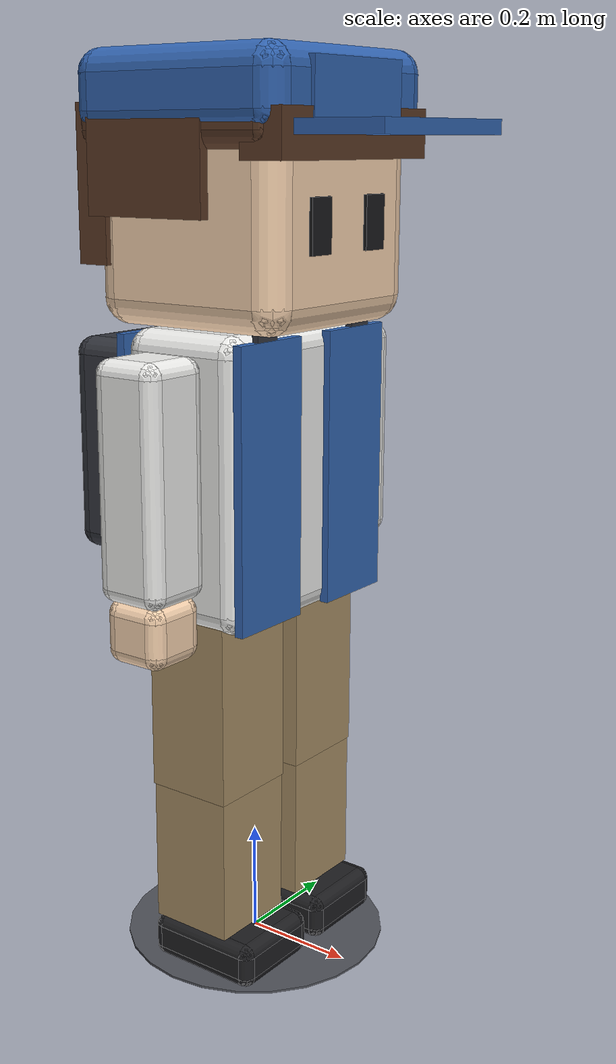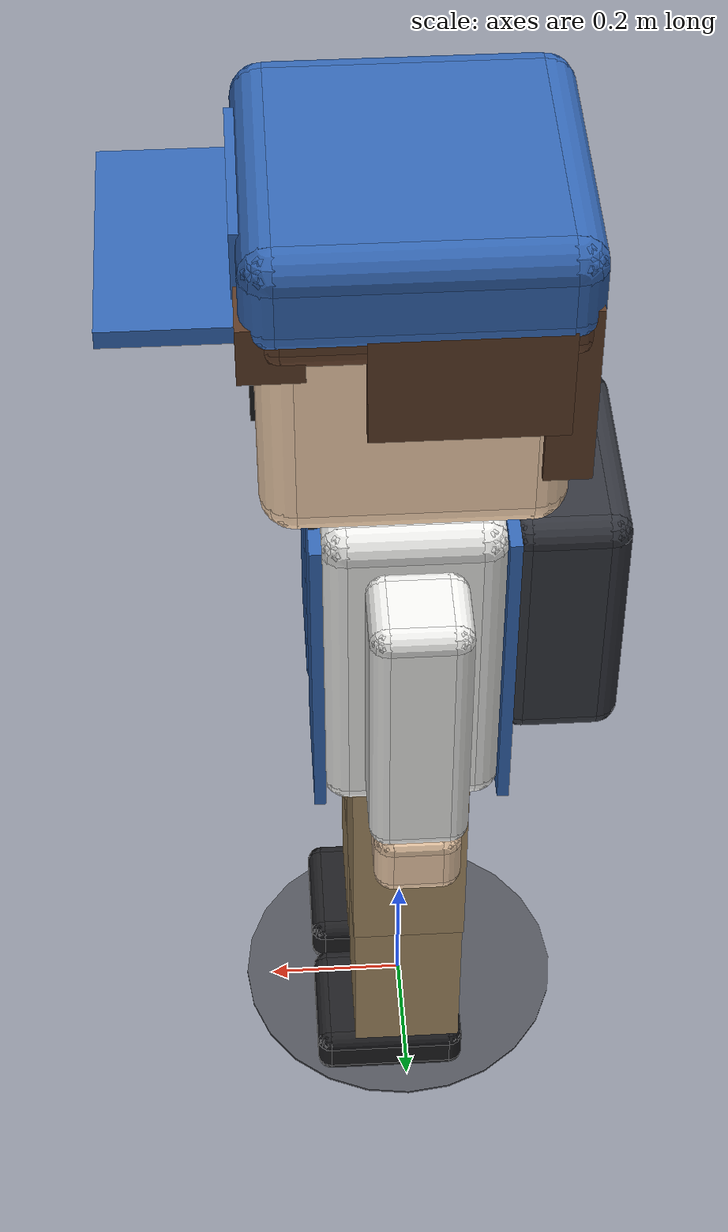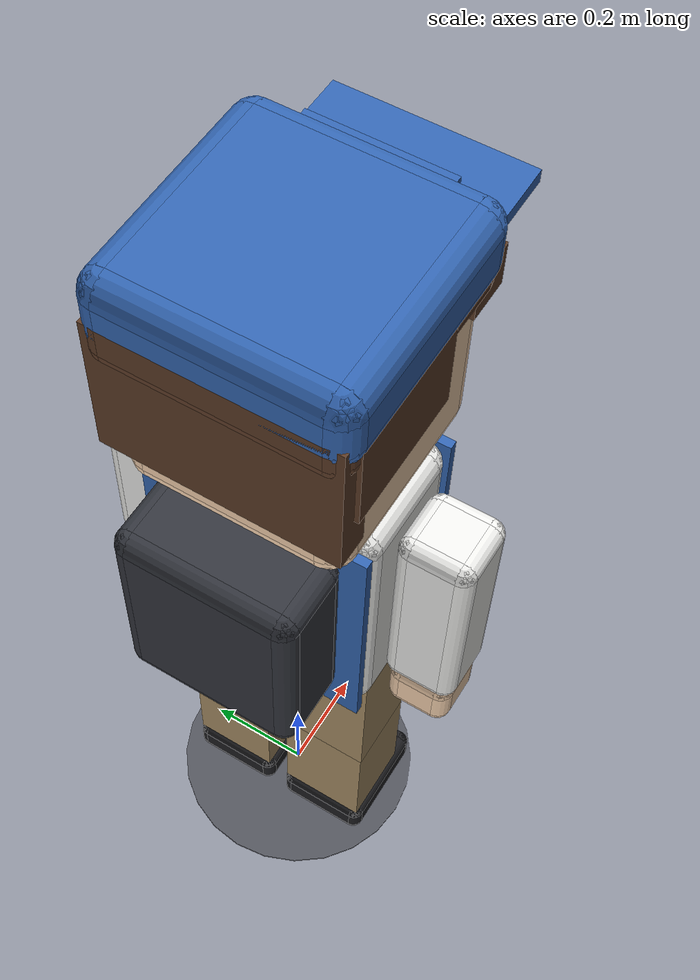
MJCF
<mujoco model="hakoniwa_person_passerby">
  <compiler angle="degree"/>
  <worldbody>
    <!-- 通行人: a stick that slides and turns; limbs are animated -->
    <body name="person" pos="0 0 0" gravcomp="1">
      <joint name="slide_x_joint" type="slide" axis="1 0 0" damping="20"/>
      <joint name="slide_y_joint" type="slide" axis="0 1 0" damping="20"/>
      <joint name="slide_z_joint" type="slide" axis="0 0 1"/>
      <joint name="turn_joint" type="hinge" axis="0 0 1" damping="5"/>
      <geom name="person_collision" type="capsule" fromto="0 0 0.54 0 0 1.36" size="0.22" mass="60" group="3" rgba="0.2 0.6 1 0"/>
      <!-- A round shadow under the feet (the stick's own part in the viewer) -->
      <geom name="shadow_visual" type="cylinder" pos="0 0 0.004" size="0.24 0.002" rgba="0.32 0.33 0.36 1" contype="0" conaffinity="0" density="0" group="1"/>
      <!-- The torso and the head are the stick's own (they do not move on it) -->
      <geom name="torso_x_visual" type="box" pos="0 0 0.9" size="0.12 0.165 0.215" rgba="0.94 0.94 0.93 1" contype="0" conaffinity="0" density="0" group="1"/>
      <geom name="torso_y_visual" type="box" pos="0 0 0.9" size="0.085 0.2 0.215" rgba="0.94 0.94 0.93 1" contype="0" conaffinity="0" density="0" group="1"/>
      <geom name="torso_z_visual" type="box" pos="0 0 0.9" size="0.085 0.165 0.25" rgba="0.94 0.94 0.93 1" contype="0" conaffinity="0" density="0" group="1"/>
      <geom name="torso_edge0_visual" type="capsule" fromto="-0.085 -0.165 0.685 0.085 -0.165 0.685" size="0.035" rgba="0.94 0.94 0.93 1" contype="0" conaffinity="0" density="0" group="1"/>
      <geom name="torso_edge1_visual" type="capsule" fromto="-0.085 -0.165 1.115 0.085 -0.165 1.115" size="0.035" rgba="0.94 0.94 0.93 1" contype="0" conaffinity="0" density="0" group="1"/>
      <geom name="torso_edge2_visual" type="capsule" fromto="-0.085 0.165 0.685 0.085 0.165 0.685" size="0.035" rgba="0.94 0.94 0.93 1" contype="0" conaffinity="0" density="0" group="1"/>
      <geom name="torso_edge3_visual" type="capsule" fromto="-0.085 0.165 1.115 0.085 0.165 1.115" size="0.035" rgba="0.94 0.94 0.93 1" contype="0" conaffinity="0" density="0" group="1"/>
      <geom name="torso_edge4_visual" type="capsule" fromto="-0.085 -0.165 0.685 -0.085 0.165 0.685" size="0.035" rgba="0.94 0.94 0.93 1" contype="0" conaffinity="0" density="0" group="1"/>
      <geom name="torso_edge5_visual" type="capsule" fromto="-0.085 -0.165 1.115 -0.085 0.165 1.115" size="0.035" rgba="0.94 0.94 0.93 1" contype="0" conaffinity="0" density="0" group="1"/>
      <geom name="torso_edge6_visual" type="capsule" fromto="0.085 -0.165 0.685 0.085 0.165 0.685" size="0.035" rgba="0.94 0.94 0.93 1" contype="0" conaffinity="0" density="0" group="1"/>
      <geom name="torso_edge7_visual" type="capsule" fromto="0.085 -0.165 1.115 0.085 0.165 1.115" size="0.035" rgba="0.94 0.94 0.93 1" contype="0" conaffinity="0" density="0" group="1"/>
      <geom name="torso_edge8_visual" type="capsule" fromto="-0.085 -0.165 0.685 -0.085 -0.165 1.115" size="0.035" rgba="0.94 0.94 0.93 1" contype="0" conaffinity="0" density="0" group="1"/>
      <geom name="torso_edge9_visual" type="capsule" fromto="-0.085 0.165 0.685 -0.085 0.165 1.115" size="0.035" rgba="0.94 0.94 0.93 1" contype="0" conaffinity="0" density="0" group="1"/>
      <geom name="torso_edge10_visual" type="capsule" fromto="0.085 -0.165 0.685 0.085 -0.165 1.115" size="0.035" rgba="0.94 0.94 0.93 1" contype="0" conaffinity="0" density="0" group="1"/>
      <geom name="torso_edge11_visual" type="capsule" fromto="0.085 0.165 0.685 0.085 0.165 1.115" size="0.035" rgba="0.94 0.94 0.93 1" contype="0" conaffinity="0" density="0" group="1"/>
      <geom name="vest_left_visual" type="box" pos="0.124 0.12 0.9" size="0.008 0.08 0.24" rgba="0.20 0.40 0.70 1" contype="0" conaffinity="0" density="0" group="1"/>
      <geom name="vest_right_visual" type="box" pos="0.124 -0.12 0.9" size="0.008 0.08 0.24" rgba="0.20 0.40 0.70 1" contype="0" conaffinity="0" density="0" group="1"/>
      <geom name="vest_back_visual" type="box" pos="-0.124 0 0.9" size="0.008 0.2 0.24" rgba="0.20 0.40 0.70 1" contype="0" conaffinity="0" density="0" group="1"/>
      <geom name="backpack_x_visual" type="box" pos="-0.2 0 0.93" size="0.08 0.13 0.16" rgba="0.20 0.21 0.24 1" contype="0" conaffinity="0" density="0" group="1"/>
      <geom name="backpack_y_visual" type="box" pos="-0.2 0 0.93" size="0.05 0.16 0.16" rgba="0.20 0.21 0.24 1" contype="0" conaffinity="0" density="0" group="1"/>
      <geom name="backpack_z_visual" type="box" pos="-0.2 0 0.93" size="0.05 0.13 0.19" rgba="0.20 0.21 0.24 1" contype="0" conaffinity="0" density="0" group="1"/>
      <geom name="backpack_edge0_visual" type="capsule" fromto="-0.25 -0.13 0.77 -0.15 -0.13 0.77" size="0.03" rgba="0.20 0.21 0.24 1" contype="0" conaffinity="0" density="0" group="1"/>
      <geom name="backpack_edge1_visual" type="capsule" fromto="-0.25 -0.13 1.09 -0.15 -0.13 1.09" size="0.03" rgba="0.20 0.21 0.24 1" contype="0" conaffinity="0" density="0" group="1"/>
      <geom name="backpack_edge2_visual" type="capsule" fromto="-0.25 0.13 0.77 -0.15 0.13 0.77" size="0.03" rgba="0.20 0.21 0.24 1" contype="0" conaffinity="0" density="0" group="1"/>
      <geom name="backpack_edge3_visual" type="capsule" fromto="-0.25 0.13 1.09 -0.15 0.13 1.09" size="0.03" rgba="0.20 0.21 0.24 1" contype="0" conaffinity="0" density="0" group="1"/>
      <geom name="backpack_edge4_visual" type="capsule" fromto="-0.25 -0.13 0.77 -0.25 0.13 0.77" size="0.03" rgba="0.20 0.21 0.24 1" contype="0" conaffinity="0" density="0" group="1"/>
      <geom name="backpack_edge5_visual" type="capsule" fromto="-0.25 -0.13 1.09 -0.25 0.13 1.09" size="0.03" rgba="0.20 0.21 0.24 1" contype="0" conaffinity="0" density="0" group="1"/>
      <geom name="backpack_edge6_visual" type="capsule" fromto="-0.15 -0.13 0.77 -0.15 0.13 0.77" size="0.03" rgba="0.20 0.21 0.24 1" contype="0" conaffinity="0" density="0" group="1"/>
      <geom name="backpack_edge7_visual" type="capsule" fromto="-0.15 -0.13 1.09 -0.15 0.13 1.09" size="0.03" rgba="0.20 0.21 0.24 1" contype="0" conaffinity="0" density="0" group="1"/>
      <geom name="backpack_edge8_visual" type="capsule" fromto="-0.25 -0.13 0.77 -0.25 -0.13 1.09" size="0.03" rgba="0.20 0.21 0.24 1" contype="0" conaffinity="0" density="0" group="1"/>
      <geom name="backpack_edge9_visual" type="capsule" fromto="-0.25 0.13 0.77 -0.25 0.13 1.09" size="0.03" rgba="0.20 0.21 0.24 1" contype="0" conaffinity="0" density="0" group="1"/>
      <geom name="backpack_edge10_visual" type="capsule" fromto="-0.15 -0.13 0.77 -0.15 -0.13 1.09" size="0.03" rgba="0.20 0.21 0.24 1" contype="0" conaffinity="0" density="0" group="1"/>
      <geom name="backpack_edge11_visual" type="capsule" fromto="-0.15 0.13 0.77 -0.15 0.13 1.09" size="0.03" rgba="0.20 0.21 0.24 1" contype="0" conaffinity="0" density="0" group="1"/>
      <geom name="backpack_strap_left_visual" type="box" pos="0.125 0.13 0.96" size="0.006 0.025 0.2" rgba="0.20 0.21 0.24 1" contype="0" conaffinity="0" density="0" group="1"/>
      <geom name="backpack_strap_right_visual" type="box" pos="0.125 -0.13 0.96" size="0.006 0.025 0.2" rgba="0.20 0.21 0.24 1" contype="0" conaffinity="0" density="0" group="1"/>
      <geom name="head_x_visual" type="box" pos="0 0 1.33" size="0.19 0.145 0.135" rgba="0.98 0.84 0.70 1" contype="0" conaffinity="0" density="0" group="1"/>
      <geom name="head_y_visual" type="box" pos="0 0 1.33" size="0.145 0.19 0.135" rgba="0.98 0.84 0.70 1" contype="0" conaffinity="0" density="0" group="1"/>
      <geom name="head_z_visual" type="box" pos="0 0 1.33" size="0.145 0.145 0.18" rgba="0.98 0.84 0.70 1" contype="0" conaffinity="0" density="0" group="1"/>
      <geom name="head_edge0_visual" type="capsule" fromto="-0.145 -0.145 1.195 0.145 -0.145 1.195" size="0.045" rgba="0.98 0.84 0.70 1" contype="0" conaffinity="0" density="0" group="1"/>
      <geom name="head_edge1_visual" type="capsule" fromto="-0.145 -0.145 1.465 0.145 -0.145 1.465" size="0.045" rgba="0.98 0.84 0.70 1" contype="0" conaffinity="0" density="0" group="1"/>
      <geom name="head_edge2_visual" type="capsule" fromto="-0.145 0.145 1.195 0.145 0.145 1.195" size="0.045" rgba="0.98 0.84 0.70 1" contype="0" conaffinity="0" density="0" group="1"/>
      <geom name="head_edge3_visual" type="capsule" fromto="-0.145 0.145 1.465 0.145 0.145 1.465" size="0.045" rgba="0.98 0.84 0.70 1" contype="0" conaffinity="0" density="0" group="1"/>
      <geom name="head_edge4_visual" type="capsule" fromto="-0.145 -0.145 1.195 -0.145 0.145 1.195" size="0.045" rgba="0.98 0.84 0.70 1" contype="0" conaffinity="0" density="0" group="1"/>
      <geom name="head_edge5_visual" type="capsule" fromto="-0.145 -0.145 1.465 -0.145 0.145 1.465" size="0.045" rgba="0.98 0.84 0.70 1" contype="0" conaffinity="0" density="0" group="1"/>
      <geom name="head_edge6_visual" type="capsule" fromto="0.145 -0.145 1.195 0.145 0.145 1.195" size="0.045" rgba="0.98 0.84 0.70 1" contype="0" conaffinity="0" density="0" group="1"/>
      <geom name="head_edge7_visual" type="capsule" fromto="0.145 -0.145 1.465 0.145 0.145 1.465" size="0.045" rgba="0.98 0.84 0.70 1" contype="0" conaffinity="0" density="0" group="1"/>
      <geom name="head_edge8_visual" type="capsule" fromto="-0.145 -0.145 1.195 -0.145 -0.145 1.465" size="0.045" rgba="0.98 0.84 0.70 1" contype="0" conaffinity="0" density="0" group="1"/>
      <geom name="head_edge9_visual" type="capsule" fromto="-0.145 0.145 1.195 -0.145 0.145 1.465" size="0.045" rgba="0.98 0.84 0.70 1" contype="0" conaffinity="0" density="0" group="1"/>
      <geom name="head_edge10_visual" type="capsule" fromto="0.145 -0.145 1.195 0.145 -0.145 1.465" size="0.045" rgba="0.98 0.84 0.70 1" contype="0" conaffinity="0" density="0" group="1"/>
      <geom name="head_edge11_visual" type="capsule" fromto="0.145 0.145 1.195 0.145 0.145 1.465" size="0.045" rgba="0.98 0.84 0.70 1" contype="0" conaffinity="0" density="0" group="1"/>
      <geom name="eye_left_visual" type="box" pos="0.192 0.075 1.32" size="0.004 0.026 0.045" rgba="0.10 0.10 0.11 1" contype="0" conaffinity="0" density="0" group="1"/>
      <geom name="eye_right_visual" type="box" pos="0.192 -0.075 1.32" size="0.004 0.026 0.045" rgba="0.10 0.10 0.11 1" contype="0" conaffinity="0" density="0" group="1"/>
      <geom name="hair_top_x_visual" type="box" pos="-0.01 0 1.49" size="0.205 0.17 0.025" rgba="0.36 0.23 0.15 1" contype="0" conaffinity="0" density="0" group="1"/>
      <geom name="hair_top_y_visual" type="box" pos="-0.01 0 1.49" size="0.17 0.205 0.025" rgba="0.36 0.23 0.15 1" contype="0" conaffinity="0" density="0" group="1"/>
      <geom name="hair_top_z_visual" type="box" pos="-0.01 0 1.49" size="0.17 0.17 0.06" rgba="0.36 0.23 0.15 1" contype="0" conaffinity="0" density="0" group="1"/>
      <geom name="hair_top_edge0_visual" type="capsule" fromto="-0.18 -0.17 1.465 0.16 -0.17 1.465" size="0.035" rgba="0.36 0.23 0.15 1" contype="0" conaffinity="0" density="0" group="1"/>
      <geom name="hair_top_edge1_visual" type="capsule" fromto="-0.18 -0.17 1.515 0.16 -0.17 1.515" size="0.035" rgba="0.36 0.23 0.15 1" contype="0" conaffinity="0" density="0" group="1"/>
      <geom name="hair_top_edge2_visual" type="capsule" fromto="-0.18 0.17 1.465 0.16 0.17 1.465" size="0.035" rgba="0.36 0.23 0.15 1" contype="0" conaffinity="0" density="0" group="1"/>
      <geom name="hair_top_edge3_visual" type="capsule" fromto="-0.18 0.17 1.515 0.16 0.17 1.515" size="0.035" rgba="0.36 0.23 0.15 1" contype="0" conaffinity="0" density="0" group="1"/>
      <geom name="hair_top_edge4_visual" type="capsule" fromto="-0.18 -0.17 1.465 -0.18 0.17 1.465" size="0.035" rgba="0.36 0.23 0.15 1" contype="0" conaffinity="0" density="0" group="1"/>
      <geom name="hair_top_edge5_visual" type="capsule" fromto="-0.18 -0.17 1.515 -0.18 0.17 1.515" size="0.035" rgba="0.36 0.23 0.15 1" contype="0" conaffinity="0" density="0" group="1"/>
      <geom name="hair_top_edge6_visual" type="capsule" fromto="0.16 -0.17 1.465 0.16 0.17 1.465" size="0.035" rgba="0.36 0.23 0.15 1" contype="0" conaffinity="0" density="0" group="1"/>
      <geom name="hair_top_edge7_visual" type="capsule" fromto="0.16 -0.17 1.515 0.16 0.17 1.515" size="0.035" rgba="0.36 0.23 0.15 1" contype="0" conaffinity="0" density="0" group="1"/>
      <geom name="hair_top_edge8_visual" type="capsule" fromto="-0.18 -0.17 1.465 -0.18 -0.17 1.515" size="0.035" rgba="0.36 0.23 0.15 1" contype="0" conaffinity="0" density="0" group="1"/>
      <geom name="hair_top_edge9_visual" type="capsule" fromto="-0.18 0.17 1.465 -0.18 0.17 1.515" size="0.035" rgba="0.36 0.23 0.15 1" contype="0" conaffinity="0" density="0" group="1"/>
      <geom name="hair_top_edge10_visual" type="capsule" fromto="0.16 -0.17 1.465 0.16 -0.17 1.515" size="0.035" rgba="0.36 0.23 0.15 1" contype="0" conaffinity="0" density="0" group="1"/>
      <geom name="hair_top_edge11_visual" type="capsule" fromto="0.16 0.17 1.465 0.16 0.17 1.515" size="0.035" rgba="0.36 0.23 0.15 1" contype="0" conaffinity="0" density="0" group="1"/>
      <geom name="hair_back_visual" type="box" pos="-0.18 0 1.38" size="0.03 0.2 0.13" rgba="0.36 0.23 0.15 1" contype="0" conaffinity="0" density="0" group="1"/>
      <geom name="hair_fringe_visual" type="box" pos="0.17 0 1.46" size="0.04 0.2 0.04" rgba="0.36 0.23 0.15 1" contype="0" conaffinity="0" density="0" group="1"/>
      <geom name="hair_side_left_visual" type="box" pos="-0.06 0.19 1.41" size="0.12 0.018 0.08" rgba="0.36 0.23 0.15 1" contype="0" conaffinity="0" density="0" group="1"/>
      <geom name="hair_side_right_visual" type="box" pos="-0.06 -0.19 1.41" size="0.12 0.018 0.08" rgba="0.36 0.23 0.15 1" contype="0" conaffinity="0" density="0" group="1"/>
      <geom name="cap_x_visual" type="box" pos="-0.005 0 1.525" size="0.21 0.17 0.03" rgba="0.20 0.40 0.70 1" contype="0" conaffinity="0" density="0" group="1"/>
      <geom name="cap_y_visual" type="box" pos="-0.005 0 1.525" size="0.17 0.21 0.03" rgba="0.20 0.40 0.70 1" contype="0" conaffinity="0" density="0" group="1"/>
      <geom name="cap_z_visual" type="box" pos="-0.005 0 1.525" size="0.17 0.17 0.07" rgba="0.20 0.40 0.70 1" contype="0" conaffinity="0" density="0" group="1"/>
      <geom name="cap_edge0_visual" type="capsule" fromto="-0.175 -0.17 1.495 0.165 -0.17 1.495" size="0.04" rgba="0.20 0.40 0.70 1" contype="0" conaffinity="0" density="0" group="1"/>
      <geom name="cap_edge1_visual" type="capsule" fromto="-0.175 -0.17 1.555 0.165 -0.17 1.555" size="0.04" rgba="0.20 0.40 0.70 1" contype="0" conaffinity="0" density="0" group="1"/>
      <geom name="cap_edge2_visual" type="capsule" fromto="-0.175 0.17 1.495 0.165 0.17 1.495" size="0.04" rgba="0.20 0.40 0.70 1" contype="0" conaffinity="0" density="0" group="1"/>
      <geom name="cap_edge3_visual" type="capsule" fromto="-0.175 0.17 1.555 0.165 0.17 1.555" size="0.04" rgba="0.20 0.40 0.70 1" contype="0" conaffinity="0" density="0" group="1"/>
      <geom name="cap_edge4_visual" type="capsule" fromto="-0.175 -0.17 1.495 -0.175 0.17 1.495" size="0.04" rgba="0.20 0.40 0.70 1" contype="0" conaffinity="0" density="0" group="1"/>
      <geom name="cap_edge5_visual" type="capsule" fromto="-0.175 -0.17 1.555 -0.175 0.17 1.555" size="0.04" rgba="0.20 0.40 0.70 1" contype="0" conaffinity="0" density="0" group="1"/>
      <geom name="cap_edge6_visual" type="capsule" fromto="0.165 -0.17 1.495 0.165 0.17 1.495" size="0.04" rgba="0.20 0.40 0.70 1" contype="0" conaffinity="0" density="0" group="1"/>
      <geom name="cap_edge7_visual" type="capsule" fromto="0.165 -0.17 1.555 0.165 0.17 1.555" size="0.04" rgba="0.20 0.40 0.70 1" contype="0" conaffinity="0" density="0" group="1"/>
      <geom name="cap_edge8_visual" type="capsule" fromto="-0.175 -0.17 1.495 -0.175 -0.17 1.555" size="0.04" rgba="0.20 0.40 0.70 1" contype="0" conaffinity="0" density="0" group="1"/>
      <geom name="cap_edge9_visual" type="capsule" fromto="-0.175 0.17 1.495 -0.175 0.17 1.555" size="0.04" rgba="0.20 0.40 0.70 1" contype="0" conaffinity="0" density="0" group="1"/>
      <geom name="cap_edge10_visual" type="capsule" fromto="0.165 -0.17 1.495 0.165 -0.17 1.555" size="0.04" rgba="0.20 0.40 0.70 1" contype="0" conaffinity="0" density="0" group="1"/>
      <geom name="cap_edge11_visual" type="capsule" fromto="0.165 0.17 1.495 0.165 0.17 1.555" size="0.04" rgba="0.20 0.40 0.70 1" contype="0" conaffinity="0" density="0" group="1"/>
      <geom name="cap_front_visual" type="box" pos="0.206 0 1.525" size="0.006 0.12 0.05" rgba="0.20 0.40 0.70 1" contype="0" conaffinity="0" density="0" group="1"/>
      <geom name="cap_brim_visual" type="box" pos="0.28 0 1.47" size="0.09 0.17 0.012" rgba="0.20 0.40 0.70 1" contype="0" conaffinity="0" density="0" group="1"/>
      <body name="arm_left" pos="0 0.27 1.1">
        <joint name="shoulder_left_joint" type="hinge" axis="0 1 0" range="-75 75" limited="true" stiffness="40" damping="4"/>
        <inertial pos="0 0 -0.25" mass="0.5" diaginertia="0.01 0.01 0.002"/>
        <geom name="arm_left_x_visual" type="box" pos="0 0 -0.18" size="0.065 0.04 0.175" rgba="0.94 0.94 0.93 1" contype="0" conaffinity="0" density="0" group="1"/>
        <geom name="arm_left_y_visual" type="box" pos="0 0 -0.18" size="0.04 0.065 0.175" rgba="0.94 0.94 0.93 1" contype="0" conaffinity="0" density="0" group="1"/>
        <geom name="arm_left_z_visual" type="box" pos="0 0 -0.18" size="0.04 0.04 0.2" rgba="0.94 0.94 0.93 1" contype="0" conaffinity="0" density="0" group="1"/>
        <geom name="arm_left_edge0_visual" type="capsule" fromto="-0.04 -0.04 -0.355 0.04 -0.04 -0.355" size="0.025" rgba="0.94 0.94 0.93 1" contype="0" conaffinity="0" density="0" group="1"/>
        <geom name="arm_left_edge1_visual" type="capsule" fromto="-0.04 -0.04 -0.005 0.04 -0.04 -0.005" size="0.025" rgba="0.94 0.94 0.93 1" contype="0" conaffinity="0" density="0" group="1"/>
        <geom name="arm_left_edge2_visual" type="capsule" fromto="-0.04 0.04 -0.355 0.04 0.04 -0.355" size="0.025" rgba="0.94 0.94 0.93 1" contype="0" conaffinity="0" density="0" group="1"/>
        <geom name="arm_left_edge3_visual" type="capsule" fromto="-0.04 0.04 -0.005 0.04 0.04 -0.005" size="0.025" rgba="0.94 0.94 0.93 1" contype="0" conaffinity="0" density="0" group="1"/>
        <geom name="arm_left_edge4_visual" type="capsule" fromto="-0.04 -0.04 -0.355 -0.04 0.04 -0.355" size="0.025" rgba="0.94 0.94 0.93 1" contype="0" conaffinity="0" density="0" group="1"/>
        <geom name="arm_left_edge5_visual" type="capsule" fromto="-0.04 -0.04 -0.005 -0.04 0.04 -0.005" size="0.025" rgba="0.94 0.94 0.93 1" contype="0" conaffinity="0" density="0" group="1"/>
        <geom name="arm_left_edge6_visual" type="capsule" fromto="0.04 -0.04 -0.355 0.04 0.04 -0.355" size="0.025" rgba="0.94 0.94 0.93 1" contype="0" conaffinity="0" density="0" group="1"/>
        <geom name="arm_left_edge7_visual" type="capsule" fromto="0.04 -0.04 -0.005 0.04 0.04 -0.005" size="0.025" rgba="0.94 0.94 0.93 1" contype="0" conaffinity="0" density="0" group="1"/>
        <geom name="arm_left_edge8_visual" type="capsule" fromto="-0.04 -0.04 -0.355 -0.04 -0.04 -0.005" size="0.025" rgba="0.94 0.94 0.93 1" contype="0" conaffinity="0" density="0" group="1"/>
        <geom name="arm_left_edge9_visual" type="capsule" fromto="-0.04 0.04 -0.355 -0.04 0.04 -0.005" size="0.025" rgba="0.94 0.94 0.93 1" contype="0" conaffinity="0" density="0" group="1"/>
        <geom name="arm_left_edge10_visual" type="capsule" fromto="0.04 -0.04 -0.355 0.04 -0.04 -0.005" size="0.025" rgba="0.94 0.94 0.93 1" contype="0" conaffinity="0" density="0" group="1"/>
        <geom name="arm_left_edge11_visual" type="capsule" fromto="0.04 0.04 -0.355 0.04 0.04 -0.005" size="0.025" rgba="0.94 0.94 0.93 1" contype="0" conaffinity="0" density="0" group="1"/>
        <geom name="hand_left_x_visual" type="box" pos="0 0 -0.43" size="0.058 0.033 0.03" rgba="0.98 0.84 0.70 1" contype="0" conaffinity="0" density="0" group="1"/>
        <geom name="hand_left_y_visual" type="box" pos="0 0 -0.43" size="0.033 0.058 0.03" rgba="0.98 0.84 0.70 1" contype="0" conaffinity="0" density="0" group="1"/>
        <geom name="hand_left_z_visual" type="box" pos="0 0 -0.43" size="0.033 0.033 0.055" rgba="0.98 0.84 0.70 1" contype="0" conaffinity="0" density="0" group="1"/>
        <geom name="hand_left_edge0_visual" type="capsule" fromto="-0.033 -0.033 -0.46 0.033 -0.033 -0.46" size="0.025" rgba="0.98 0.84 0.70 1" contype="0" conaffinity="0" density="0" group="1"/>
        <geom name="hand_left_edge1_visual" type="capsule" fromto="-0.033 -0.033 -0.4 0.033 -0.033 -0.4" size="0.025" rgba="0.98 0.84 0.70 1" contype="0" conaffinity="0" density="0" group="1"/>
        <geom name="hand_left_edge2_visual" type="capsule" fromto="-0.033 0.033 -0.46 0.033 0.033 -0.46" size="0.025" rgba="0.98 0.84 0.70 1" contype="0" conaffinity="0" density="0" group="1"/>
        <geom name="hand_left_edge3_visual" type="capsule" fromto="-0.033 0.033 -0.4 0.033 0.033 -0.4" size="0.025" rgba="0.98 0.84 0.70 1" contype="0" conaffinity="0" density="0" group="1"/>
        <geom name="hand_left_edge4_visual" type="capsule" fromto="-0.033 -0.033 -0.46 -0.033 0.033 -0.46" size="0.025" rgba="0.98 0.84 0.70 1" contype="0" conaffinity="0" density="0" group="1"/>
        <geom name="hand_left_edge5_visual" type="capsule" fromto="-0.033 -0.033 -0.4 -0.033 0.033 -0.4" size="0.025" rgba="0.98 0.84 0.70 1" contype="0" conaffinity="0" density="0" group="1"/>
        <geom name="hand_left_edge6_visual" type="capsule" fromto="0.033 -0.033 -0.46 0.033 0.033 -0.46" size="0.025" rgba="0.98 0.84 0.70 1" contype="0" conaffinity="0" density="0" group="1"/>
        <geom name="hand_left_edge7_visual" type="capsule" fromto="0.033 -0.033 -0.4 0.033 0.033 -0.4" size="0.025" rgba="0.98 0.84 0.70 1" contype="0" conaffinity="0" density="0" group="1"/>
        <geom name="hand_left_edge8_visual" type="capsule" fromto="-0.033 -0.033 -0.46 -0.033 -0.033 -0.4" size="0.025" rgba="0.98 0.84 0.70 1" contype="0" conaffinity="0" density="0" group="1"/>
        <geom name="hand_left_edge9_visual" type="capsule" fromto="-0.033 0.033 -0.46 -0.033 0.033 -0.4" size="0.025" rgba="0.98 0.84 0.70 1" contype="0" conaffinity="0" density="0" group="1"/>
        <geom name="hand_left_edge10_visual" type="capsule" fromto="0.033 -0.033 -0.46 0.033 -0.033 -0.4" size="0.025" rgba="0.98 0.84 0.70 1" contype="0" conaffinity="0" density="0" group="1"/>
        <geom name="hand_left_edge11_visual" type="capsule" fromto="0.033 0.033 -0.46 0.033 0.033 -0.4" size="0.025" rgba="0.98 0.84 0.70 1" contype="0" conaffinity="0" density="0" group="1"/>
      </body>
      <body name="arm_right" pos="0 -0.27 1.1">
        <joint name="shoulder_right_joint" type="hinge" axis="0 1 0" range="-75 75" limited="true" stiffness="40" damping="4"/>
        <inertial pos="0 0 -0.25" mass="0.5" diaginertia="0.01 0.01 0.002"/>
        <geom name="arm_right_x_visual" type="box" pos="0 0 -0.18" size="0.065 0.04 0.175" rgba="0.94 0.94 0.93 1" contype="0" conaffinity="0" density="0" group="1"/>
        <geom name="arm_right_y_visual" type="box" pos="0 0 -0.18" size="0.04 0.065 0.175" rgba="0.94 0.94 0.93 1" contype="0" conaffinity="0" density="0" group="1"/>
        <geom name="arm_right_z_visual" type="box" pos="0 0 -0.18" size="0.04 0.04 0.2" rgba="0.94 0.94 0.93 1" contype="0" conaffinity="0" density="0" group="1"/>
        <geom name="arm_right_edge0_visual" type="capsule" fromto="-0.04 -0.04 -0.355 0.04 -0.04 -0.355" size="0.025" rgba="0.94 0.94 0.93 1" contype="0" conaffinity="0" density="0" group="1"/>
        <geom name="arm_right_edge1_visual" type="capsule" fromto="-0.04 -0.04 -0.005 0.04 -0.04 -0.005" size="0.025" rgba="0.94 0.94 0.93 1" contype="0" conaffinity="0" density="0" group="1"/>
        <geom name="arm_right_edge2_visual" type="capsule" fromto="-0.04 0.04 -0.355 0.04 0.04 -0.355" size="0.025" rgba="0.94 0.94 0.93 1" contype="0" conaffinity="0" density="0" group="1"/>
        <geom name="arm_right_edge3_visual" type="capsule" fromto="-0.04 0.04 -0.005 0.04 0.04 -0.005" size="0.025" rgba="0.94 0.94 0.93 1" contype="0" conaffinity="0" density="0" group="1"/>
        <geom name="arm_right_edge4_visual" type="capsule" fromto="-0.04 -0.04 -0.355 -0.04 0.04 -0.355" size="0.025" rgba="0.94 0.94 0.93 1" contype="0" conaffinity="0" density="0" group="1"/>
        <geom name="arm_right_edge5_visual" type="capsule" fromto="-0.04 -0.04 -0.005 -0.04 0.04 -0.005" size="0.025" rgba="0.94 0.94 0.93 1" contype="0" conaffinity="0" density="0" group="1"/>
        <geom name="arm_right_edge6_visual" type="capsule" fromto="0.04 -0.04 -0.355 0.04 0.04 -0.355" size="0.025" rgba="0.94 0.94 0.93 1" contype="0" conaffinity="0" density="0" group="1"/>
        <geom name="arm_right_edge7_visual" type="capsule" fromto="0.04 -0.04 -0.005 0.04 0.04 -0.005" size="0.025" rgba="0.94 0.94 0.93 1" contype="0" conaffinity="0" density="0" group="1"/>
        <geom name="arm_right_edge8_visual" type="capsule" fromto="-0.04 -0.04 -0.355 -0.04 -0.04 -0.005" size="0.025" rgba="0.94 0.94 0.93 1" contype="0" conaffinity="0" density="0" group="1"/>
        <geom name="arm_right_edge9_visual" type="capsule" fromto="-0.04 0.04 -0.355 -0.04 0.04 -0.005" size="0.025" rgba="0.94 0.94 0.93 1" contype="0" conaffinity="0" density="0" group="1"/>
        <geom name="arm_right_edge10_visual" type="capsule" fromto="0.04 -0.04 -0.355 0.04 -0.04 -0.005" size="0.025" rgba="0.94 0.94 0.93 1" contype="0" conaffinity="0" density="0" group="1"/>
        <geom name="arm_right_edge11_visual" type="capsule" fromto="0.04 0.04 -0.355 0.04 0.04 -0.005" size="0.025" rgba="0.94 0.94 0.93 1" contype="0" conaffinity="0" density="0" group="1"/>
        <geom name="hand_right_x_visual" type="box" pos="0 0 -0.43" size="0.058 0.033 0.03" rgba="0.98 0.84 0.70 1" contype="0" conaffinity="0" density="0" group="1"/>
        <geom name="hand_right_y_visual" type="box" pos="0 0 -0.43" size="0.033 0.058 0.03" rgba="0.98 0.84 0.70 1" contype="0" conaffinity="0" density="0" group="1"/>
        <geom name="hand_right_z_visual" type="box" pos="0 0 -0.43" size="0.033 0.033 0.055" rgba="0.98 0.84 0.70 1" contype="0" conaffinity="0" density="0" group="1"/>
        <geom name="hand_right_edge0_visual" type="capsule" fromto="-0.033 -0.033 -0.46 0.033 -0.033 -0.46" size="0.025" rgba="0.98 0.84 0.70 1" contype="0" conaffinity="0" density="0" group="1"/>
        <geom name="hand_right_edge1_visual" type="capsule" fromto="-0.033 -0.033 -0.4 0.033 -0.033 -0.4" size="0.025" rgba="0.98 0.84 0.70 1" contype="0" conaffinity="0" density="0" group="1"/>
        <geom name="hand_right_edge2_visual" type="capsule" fromto="-0.033 0.033 -0.46 0.033 0.033 -0.46" size="0.025" rgba="0.98 0.84 0.70 1" contype="0" conaffinity="0" density="0" group="1"/>
        <geom name="hand_right_edge3_visual" type="capsule" fromto="-0.033 0.033 -0.4 0.033 0.033 -0.4" size="0.025" rgba="0.98 0.84 0.70 1" contype="0" conaffinity="0" density="0" group="1"/>
        <geom name="hand_right_edge4_visual" type="capsule" fromto="-0.033 -0.033 -0.46 -0.033 0.033 -0.46" size="0.025" rgba="0.98 0.84 0.70 1" contype="0" conaffinity="0" density="0" group="1"/>
        <geom name="hand_right_edge5_visual" type="capsule" fromto="-0.033 -0.033 -0.4 -0.033 0.033 -0.4" size="0.025" rgba="0.98 0.84 0.70 1" contype="0" conaffinity="0" density="0" group="1"/>
        <geom name="hand_right_edge6_visual" type="capsule" fromto="0.033 -0.033 -0.46 0.033 0.033 -0.46" size="0.025" rgba="0.98 0.84 0.70 1" contype="0" conaffinity="0" density="0" group="1"/>
        <geom name="hand_right_edge7_visual" type="capsule" fromto="0.033 -0.033 -0.4 0.033 0.033 -0.4" size="0.025" rgba="0.98 0.84 0.70 1" contype="0" conaffinity="0" density="0" group="1"/>
        <geom name="hand_right_edge8_visual" type="capsule" fromto="-0.033 -0.033 -0.46 -0.033 -0.033 -0.4" size="0.025" rgba="0.98 0.84 0.70 1" contype="0" conaffinity="0" density="0" group="1"/>
        <geom name="hand_right_edge9_visual" type="capsule" fromto="-0.033 0.033 -0.46 -0.033 0.033 -0.4" size="0.025" rgba="0.98 0.84 0.70 1" contype="0" conaffinity="0" density="0" group="1"/>
        <geom name="hand_right_edge10_visual" type="capsule" fromto="0.033 -0.033 -0.46 0.033 -0.033 -0.4" size="0.025" rgba="0.98 0.84 0.70 1" contype="0" conaffinity="0" density="0" group="1"/>
        <geom name="hand_right_edge11_visual" type="capsule" fromto="0.033 0.033 -0.46 0.033 0.033 -0.4" size="0.025" rgba="0.98 0.84 0.70 1" contype="0" conaffinity="0" density="0" group="1"/>
      </body>
      <body name="leg_left" pos="0 0.105 0.66">
        <joint name="hip_left_joint" type="hinge" axis="0 1 0" range="-100 60" limited="true" stiffness="40" damping="4"/>
        <inertial pos="0 0 -0.25" mass="0.5" diaginertia="0.01 0.01 0.002"/>
        <geom name="thigh_left_visual" type="box" pos="0 0 -0.16" size="0.08 0.085 0.16" rgba="0.66 0.56 0.40 1" contype="0" conaffinity="0" density="0" group="1"/>
        <body name="shin_left" pos="0 0 -0.32">
          <joint name="knee_left_joint" type="hinge" axis="0 1 0" range="0 120" limited="true" stiffness="40" damping="4"/>
          <inertial pos="0 0 -0.25" mass="0.5" diaginertia="0.01 0.01 0.002"/>
          <geom name="shin_left_visual" type="box" pos="0 0 -0.13" size="0.078 0.083 0.13" rgba="0.66 0.56 0.40 1" contype="0" conaffinity="0" density="0" group="1"/>
          <geom name="shoe_left_x_visual" type="box" pos="0.025 0 -0.3" size="0.11 0.07 0.02" rgba="0.12 0.12 0.13 1" contype="0" conaffinity="0" density="0" group="1"/>
          <geom name="shoe_left_y_visual" type="box" pos="0.025 0 -0.3" size="0.09 0.09 0.02" rgba="0.12 0.12 0.13 1" contype="0" conaffinity="0" density="0" group="1"/>
          <geom name="shoe_left_z_visual" type="box" pos="0.025 0 -0.3" size="0.09 0.07 0.04" rgba="0.12 0.12 0.13 1" contype="0" conaffinity="0" density="0" group="1"/>
          <geom name="shoe_left_edge0_visual" type="capsule" fromto="-0.065 -0.07 -0.32 0.115 -0.07 -0.32" size="0.02" rgba="0.12 0.12 0.13 1" contype="0" conaffinity="0" density="0" group="1"/>
          <geom name="shoe_left_edge1_visual" type="capsule" fromto="-0.065 -0.07 -0.28 0.115 -0.07 -0.28" size="0.02" rgba="0.12 0.12 0.13 1" contype="0" conaffinity="0" density="0" group="1"/>
          <geom name="shoe_left_edge2_visual" type="capsule" fromto="-0.065 0.07 -0.32 0.115 0.07 -0.32" size="0.02" rgba="0.12 0.12 0.13 1" contype="0" conaffinity="0" density="0" group="1"/>
          <geom name="shoe_left_edge3_visual" type="capsule" fromto="-0.065 0.07 -0.28 0.115 0.07 -0.28" size="0.02" rgba="0.12 0.12 0.13 1" contype="0" conaffinity="0" density="0" group="1"/>
          <geom name="shoe_left_edge4_visual" type="capsule" fromto="-0.065 -0.07 -0.32 -0.065 0.07 -0.32" size="0.02" rgba="0.12 0.12 0.13 1" contype="0" conaffinity="0" density="0" group="1"/>
          <geom name="shoe_left_edge5_visual" type="capsule" fromto="-0.065 -0.07 -0.28 -0.065 0.07 -0.28" size="0.02" rgba="0.12 0.12 0.13 1" contype="0" conaffinity="0" density="0" group="1"/>
          <geom name="shoe_left_edge6_visual" type="capsule" fromto="0.115 -0.07 -0.32 0.115 0.07 -0.32" size="0.02" rgba="0.12 0.12 0.13 1" contype="0" conaffinity="0" density="0" group="1"/>
          <geom name="shoe_left_edge7_visual" type="capsule" fromto="0.115 -0.07 -0.28 0.115 0.07 -0.28" size="0.02" rgba="0.12 0.12 0.13 1" contype="0" conaffinity="0" density="0" group="1"/>
          <geom name="shoe_left_edge8_visual" type="capsule" fromto="-0.065 -0.07 -0.32 -0.065 -0.07 -0.28" size="0.02" rgba="0.12 0.12 0.13 1" contype="0" conaffinity="0" density="0" group="1"/>
          <geom name="shoe_left_edge9_visual" type="capsule" fromto="-0.065 0.07 -0.32 -0.065 0.07 -0.28" size="0.02" rgba="0.12 0.12 0.13 1" contype="0" conaffinity="0" density="0" group="1"/>
          <geom name="shoe_left_edge10_visual" type="capsule" fromto="0.115 -0.07 -0.32 0.115 -0.07 -0.28" size="0.02" rgba="0.12 0.12 0.13 1" contype="0" conaffinity="0" density="0" group="1"/>
          <geom name="shoe_left_edge11_visual" type="capsule" fromto="0.115 0.07 -0.32 0.115 0.07 -0.28" size="0.02" rgba="0.12 0.12 0.13 1" contype="0" conaffinity="0" density="0" group="1"/>
        </body>
      </body>
      <body name="leg_right" pos="0 -0.105 0.66">
        <joint name="hip_right_joint" type="hinge" axis="0 1 0" range="-100 60" limited="true" stiffness="40" damping="4"/>
        <inertial pos="0 0 -0.25" mass="0.5" diaginertia="0.01 0.01 0.002"/>
        <geom name="thigh_right_visual" type="box" pos="0 0 -0.16" size="0.08 0.085 0.16" rgba="0.66 0.56 0.40 1" contype="0" conaffinity="0" density="0" group="1"/>
        <body name="shin_right" pos="0 0 -0.32">
          <joint name="knee_right_joint" type="hinge" axis="0 1 0" range="0 120" limited="true" stiffness="40" damping="4"/>
          <inertial pos="0 0 -0.25" mass="0.5" diaginertia="0.01 0.01 0.002"/>
          <geom name="shin_right_visual" type="box" pos="0 0 -0.13" size="0.078 0.083 0.13" rgba="0.66 0.56 0.40 1" contype="0" conaffinity="0" density="0" group="1"/>
          <geom name="shoe_right_x_visual" type="box" pos="0.025 0 -0.3" size="0.11 0.07 0.02" rgba="0.12 0.12 0.13 1" contype="0" conaffinity="0" density="0" group="1"/>
          <geom name="shoe_right_y_visual" type="box" pos="0.025 0 -0.3" size="0.09 0.09 0.02" rgba="0.12 0.12 0.13 1" contype="0" conaffinity="0" density="0" group="1"/>
          <geom name="shoe_right_z_visual" type="box" pos="0.025 0 -0.3" size="0.09 0.07 0.04" rgba="0.12 0.12 0.13 1" contype="0" conaffinity="0" density="0" group="1"/>
          <geom name="shoe_right_edge0_visual" type="capsule" fromto="-0.065 -0.07 -0.32 0.115 -0.07 -0.32" size="0.02" rgba="0.12 0.12 0.13 1" contype="0" conaffinity="0" density="0" group="1"/>
          <geom name="shoe_right_edge1_visual" type="capsule" fromto="-0.065 -0.07 -0.28 0.115 -0.07 -0.28" size="0.02" rgba="0.12 0.12 0.13 1" contype="0" conaffinity="0" density="0" group="1"/>
          <geom name="shoe_right_edge2_visual" type="capsule" fromto="-0.065 0.07 -0.32 0.115 0.07 -0.32" size="0.02" rgba="0.12 0.12 0.13 1" contype="0" conaffinity="0" density="0" group="1"/>
          <geom name="shoe_right_edge3_visual" type="capsule" fromto="-0.065 0.07 -0.28 0.115 0.07 -0.28" size="0.02" rgba="0.12 0.12 0.13 1" contype="0" conaffinity="0" density="0" group="1"/>
          <geom name="shoe_right_edge4_visual" type="capsule" fromto="-0.065 -0.07 -0.32 -0.065 0.07 -0.32" size="0.02" rgba="0.12 0.12 0.13 1" contype="0" conaffinity="0" density="0" group="1"/>
          <geom name="shoe_right_edge5_visual" type="capsule" fromto="-0.065 -0.07 -0.28 -0.065 0.07 -0.28" size="0.02" rgba="0.12 0.12 0.13 1" contype="0" conaffinity="0" density="0" group="1"/>
          <geom name="shoe_right_edge6_visual" type="capsule" fromto="0.115 -0.07 -0.32 0.115 0.07 -0.32" size="0.02" rgba="0.12 0.12 0.13 1" contype="0" conaffinity="0" density="0" group="1"/>
          <geom name="shoe_right_edge7_visual" type="capsule" fromto="0.115 -0.07 -0.28 0.115 0.07 -0.28" size="0.02" rgba="0.12 0.12 0.13 1" contype="0" conaffinity="0" density="0" group="1"/>
          <geom name="shoe_right_edge8_visual" type="capsule" fromto="-0.065 -0.07 -0.32 -0.065 -0.07 -0.28" size="0.02" rgba="0.12 0.12 0.13 1" contype="0" conaffinity="0" density="0" group="1"/>
          <geom name="shoe_right_edge9_visual" type="capsule" fromto="-0.065 0.07 -0.32 -0.065 0.07 -0.28" size="0.02" rgba="0.12 0.12 0.13 1" contype="0" conaffinity="0" density="0" group="1"/>
          <geom name="shoe_right_edge10_visual" type="capsule" fromto="0.115 -0.07 -0.32 0.115 -0.07 -0.28" size="0.02" rgba="0.12 0.12 0.13 1" contype="0" conaffinity="0" density="0" group="1"/>
          <geom name="shoe_right_edge11_visual" type="capsule" fromto="0.115 0.07 -0.32 0.115 0.07 -0.28" size="0.02" rgba="0.12 0.12 0.13 1" contype="0" conaffinity="0" density="0" group="1"/>
        </body>
      </body>
    </body>
  </worldbody>
  <actuator>
    <velocity name="move_x" joint="slide_x_joint" kv="400" ctrlrange="-3 3" forcerange="-150 150" forcelimited="true"/>
    <velocity name="move_y" joint="slide_y_joint" kv="400" ctrlrange="-3 3" forcerange="-150 150" forcelimited="true"/>
    <position name="lift" joint="slide_z_joint" kp="30000" kv="2683" ctrlrange="-10 50"/>
    <velocity name="turn" joint="turn_joint" kv="60" ctrlrange="-3.14 3.14" forcerange="-40 40" forcelimited="true"/>
  </actuator>
</mujoco>
